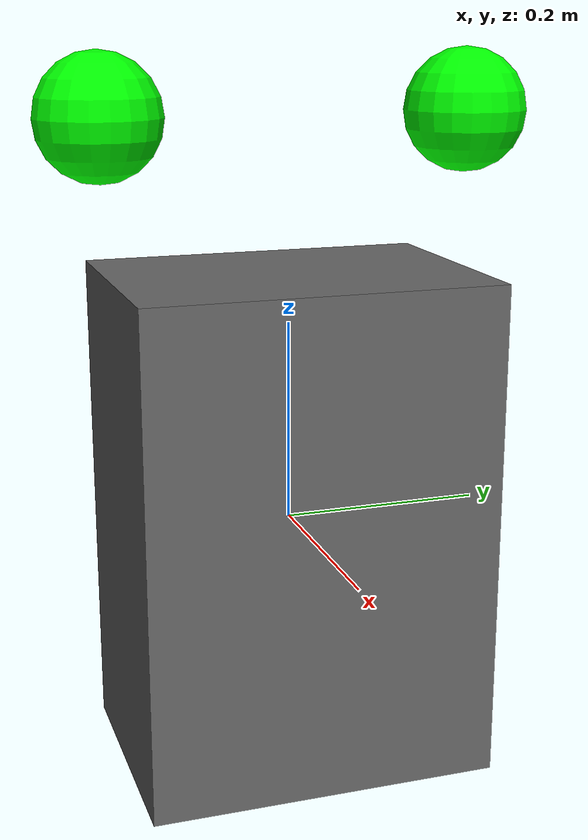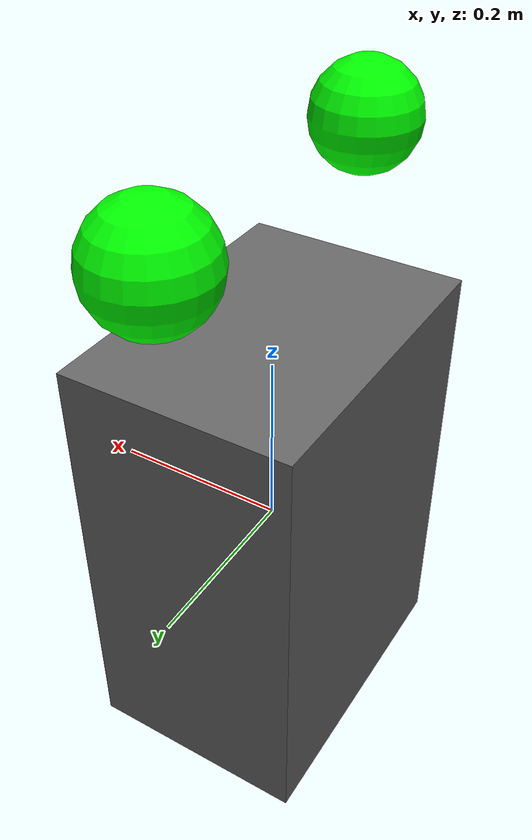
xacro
<?xml version="1.0"?>
<robot name="humanoid_upper_body" xmlns:xacro="http://www.ros.org/wiki/xacro">

  <xacro:property name="PI" value="3.14159265359"/>
  <xacro:property name="shoulder_mass" value="0.01"/>
  <xacro:property name="shoulder_link_size" value="0.001"/>
  <xacro:property name="shoulder_joint_effort" value="50"/>

  <link name="torso">
    <visual><geometry><box size="0.25 0.35 0.5"/></geometry><material name="TorsoColor"><color rgba="0.4 0.4 0.4 1"/></material></visual>
    <inertial><mass value="15.0"/><inertia ixx="0.5" ixy="0" ixz="0" iyy="0.5" iyz="0" izz="0.2"/></inertial>
  </link>

  <xacro:macro name="spherical_joint_3dof" params="prefix parent_link roll_origin_xyz">

    <joint name="${prefix}_roll_joint" type="revolute">
      <parent link="${parent_link}"/>
      <child link="${prefix}_roll_link"/>
      <origin xyz="${roll_origin_xyz}" rpy="0 0 0"/>
      <axis xyz="1 0 0"/>
      <limit effort="${shoulder_joint_effort}" velocity="1.0" lower="-${PI/2}" upper="${PI/2}"/>
    </joint>
    <link name="${prefix}_roll_link">
        <inertial><mass value="${shoulder_mass}"/><inertia ixx="0.0001" ixy="0" ixz="0" iyy="0.0001" iyz="0" izz="0.0001"/></inertial>
        <visual><geometry><box size="${shoulder_link_size} ${shoulder_link_size} ${shoulder_link_size}"/></geometry></visual>
    </link>

    <joint name="${prefix}_pitch_joint" type="revolute">
      <parent link="${prefix}_roll_link"/>
      <child link="${prefix}_pitch_link"/>
      <origin xyz="0 0 0" rpy="0 0 0"/>
      <axis xyz="0 1 0"/>
      <limit effort="${shoulder_joint_effort}" velocity="1.0" lower="-1.5" upper="1.5"/>
    </joint>
    <link name="${prefix}_pitch_link">
        <inertial><mass value="${shoulder_mass}"/><inertia ixx="0.0001" ixy="0" ixz="0" iyy="0.0001" iyz="0" izz="0.0001"/></inertial>
        <visual><geometry><box size="${shoulder_link_size} ${shoulder_link_size} ${shoulder_link_size}"/></geometry></visual>
    </link>

    <joint name="${prefix}_yaw_joint" type="revolute">
      <parent link="${prefix}_pitch_link"/>
      <child link="${prefix}_arm_base"/>
      <origin xyz="0 0 0" rpy="0 0 0"/>
      <axis xyz="0 0 1"/>
      <limit effort="${shoulder_joint_effort}" velocity="1.0" lower="-${PI}" upper="${PI}"/>
    </joint>

    <link name="${prefix}_arm_base">
        <visual><geometry><sphere radius="0.06"/></geometry><material name="JointColor"><color rgba="0 1 0 1"/></material></visual>
        <inertial><mass value="0.1"/><inertia ixx="0.001" ixy="0" ixz="0" iyy="0.001" iyz="0" izz="0.001"/></inertial>
    </link>

  </xacro:macro>

  <xacro:spherical_joint_3dof
    prefix="right_shoulder"
    parent_link="torso"
    roll_origin_xyz="0 -0.18 0.4"/>

  <xacro:spherical_joint_3dof
    prefix="left_shoulder"
    parent_link="torso"
    roll_origin_xyz="0 0.18 0.4"/>

</robot>
